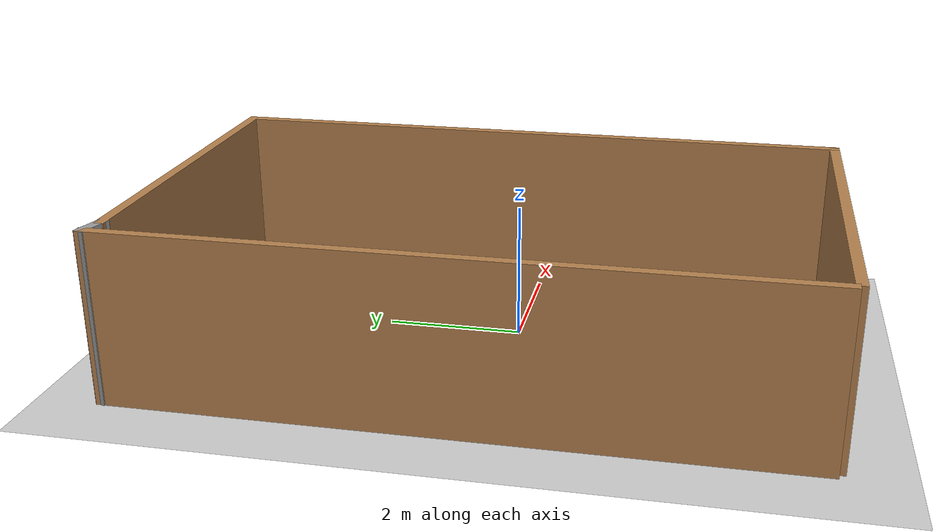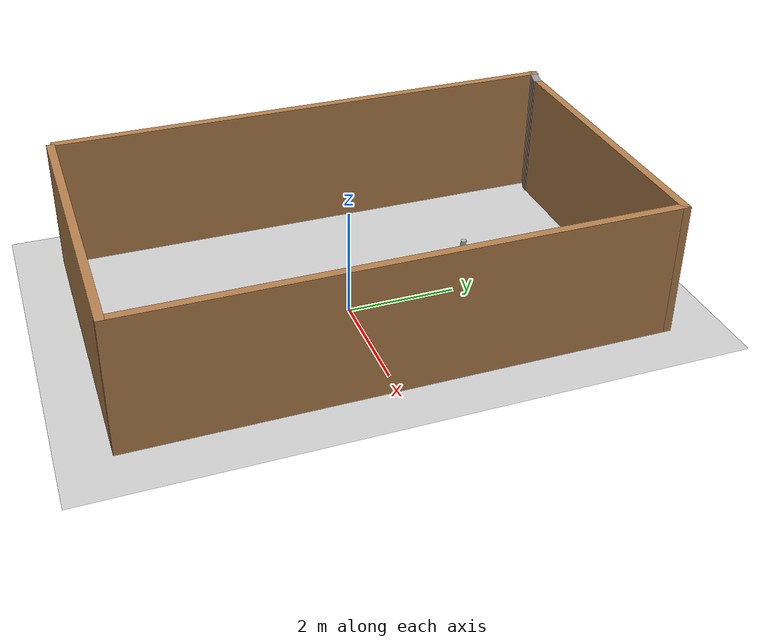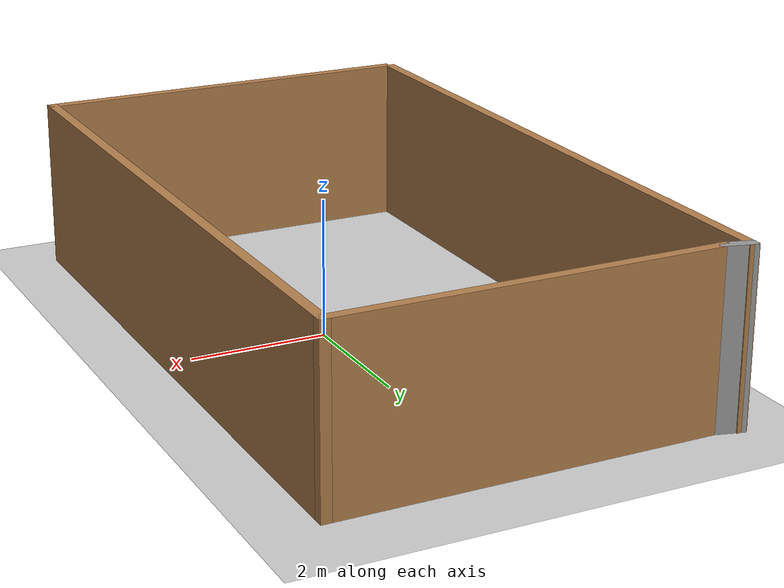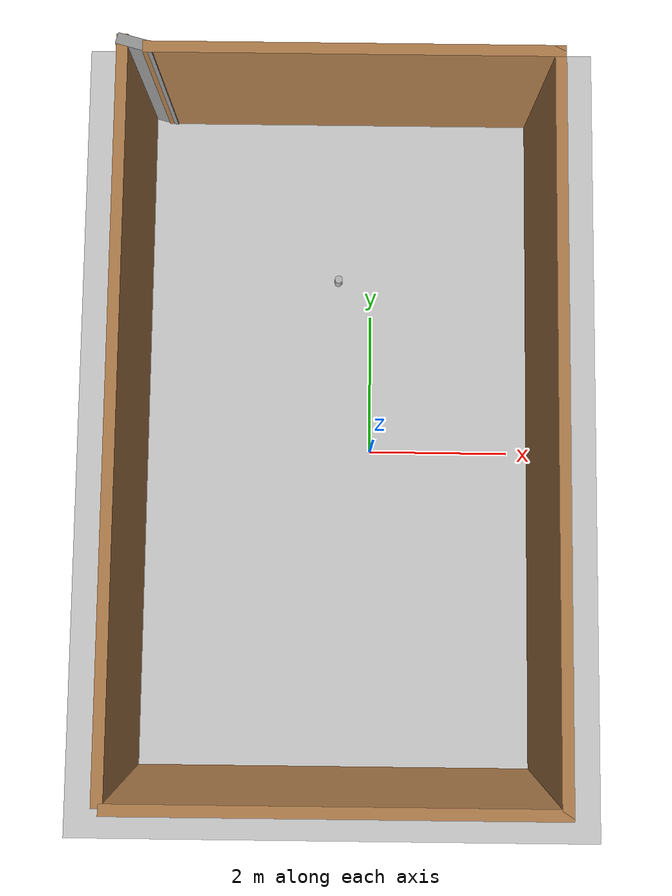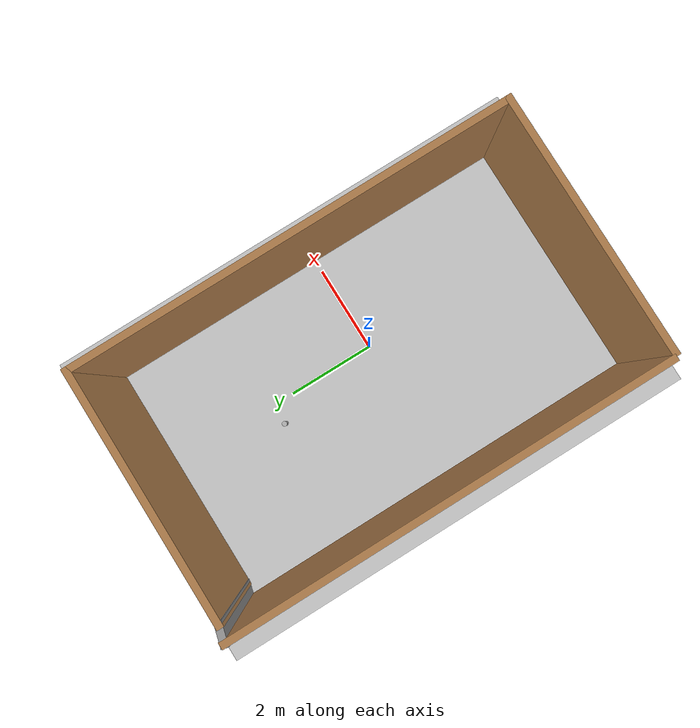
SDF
<sdf version="1.6">
 <world name="default">
  <light name="sun" type="directional">
   <pose>0 0 10 0 -0 0</pose>
   <diffuse>0.8 0.8 0.8 1</diffuse>
   <specular>0.1 0.1 0.1 1</specular>
   <attenuation>
    <range>1000</range>
    <constant>0.9</constant>
    <linear>0.01</linear>
    <quadratic>0.001</quadratic>
   </attenuation>
   <direction>-0.5 0.5 -1</direction>
  </light>
  <model name="ground_plane">
   <static>1</static>
   <link name="link">
    <collision name="collision">
     <geometry><plane><normal>0 0 1</normal><size>100 100</size></plane></geometry>
     <surface><friction><ode><mu>100</mu><mu2>50</mu2></ode></friction></surface>
    </collision>
    <visual name="visual">
     <cast_shadows>0</cast_shadows>
     <geometry><plane><normal>0 0 1</normal><size>100 100</size></plane></geometry>
     <material>
      <script><uri>file://media/materials/scripts/gazebo.material</uri><name>Gazebo/Grey</name></script>
     </material>
    </visual>
   </link>
  </model>
  <gravity>0 0 -9.8</gravity>
  <magnetic_field>6e-06 2.3e-05 -4.2e-05</magnetic_field>
  <atmosphere type="adiabatic"/>
  <physics name="default_physics" default="0" type="ode">
   <max_step_size>0.001</max_step_size>
   <real_time_factor>1</real_time_factor>
   <real_time_update_rate>1000</real_time_update_rate>
  </physics>
  <scene><ambient>0.4 0.4 0.4 1</ambient><background>0.7 0.7 0.7 1</background><shadows>1</shadows></scene>
  <spherical_coordinates>
   <surface_model>EARTH_WGS84</surface_model>
   <latitude_deg>0</latitude_deg>
   <longitude_deg>0</longitude_deg>
   <elevation>0</elevation>
   <heading_deg>0</heading_deg>
  </spherical_coordinates>
  <model name="Untitled">
   <pose>-0.487456 0.28794 0 0 -0 0</pose>
   <link name="Wall_4">
    <collision name="Wall_4_Collision">
     <geometry><box><size>5.75 0.15 2.5</size></box></geometry>
     <pose>0 0 1.25 0 -0 0</pose>
    </collision>
    <visual name="Wall_4_Visual">
     <pose>0 0 1.25 0 -0 0</pose>
     <geometry><box><size>5.75 0.15 2.5</size></box></geometry>
     <material>
      <script><uri>file://media/materials/scripts/gazebo.material</uri><name>Gazebo/Wood</name></script>
      <ambient>1 1 1 1</ambient>
     </material>
    </visual>
    <pose>0.052465 -4.85372 0 0 -0 0</pose>
   </link>
   <link name="Wall_5">
    <collision name="Wall_5_Collision">
     <geometry><box><size>9.75 0.15 2.5</size></box></geometry>
     <pose>0 0 1.25 0 -0 0</pose>
    </collision>
    <visual name="Wall_5_Visual">
     <pose>0 0 1.25 0 -0 0</pose>
     <geometry><box><size>9.75 0.15 2.5</size></box></geometry>
     <material>
      <script><uri>file://media/materials/scripts/gazebo.material</uri><name>Gazebo/Wood</name></script>
      <ambient>1 1 1 1</ambient>
     </material>
    </visual>
    <pose>2.85247 -0.053721 0 0 -0 1.5708</pose>
   </link>
   <link name="Wall_6">
    <collision name="Wall_6_Collision">
     <geometry><box><size>5.5 0.15 2.5</size></box></geometry>
     <pose>0 0 1.25 0 -0 0</pose>
    </collision>
    <visual name="Wall_6_Visual">
     <pose>0 0 1.25 0 -0 0</pose>
     <geometry><box><size>5.5 0.15 2.5</size></box></geometry>
     <material>
      <script><uri>file://media/materials/scripts/gazebo.material</uri><name>Gazebo/Wood</name></script>
      <ambient>1 1 1 1</ambient>
     </material>
    </visual>
    <pose>0.177465 4.74628 0 0 -0 3.14159</pose>
   </link>
   <link name="Wall_8">
    <collision name="Wall_8_Collision">
     <geometry><box><size>0.5 0.15 2.5</size></box></geometry>
     <pose>0 0 1.25 0 -0 0</pose>
    </collision>
    <visual name="Wall_8_Visual">
     <pose>0 0 1.25 0 -0 0</pose>
     <geometry><box><size>0.5 0.15 2.5</size></box></geometry>
     <material>
      <script><uri>file://media/materials/scripts/gazebo.material</uri><name>Gazebo/Grey</name></script>
      <ambient>1 1 1 1</ambient>
     </material>
    </visual>
    <pose>-2.66657 4.79157 0 0 -0 2.87979</pose>
   </link>
   <link name="Wall_9">
    <collision name="Wall_9_Collision">
     <geometry><box><size>9.75 0.15 2.5</size></box></geometry>
     <pose>0 0 1.25 0 -0 0</pose>
    </collision>
    <visual name="Wall_9_Visual">
     <pose>0 0 1.25 0 -0 0</pose>
     <geometry><box><size>9.75 0.15 2.5</size></box></geometry>
     <material>
      <script><uri>file://media/materials/scripts/gazebo.material</uri><name>Gazebo/Wood</name></script>
      <ambient>1 1 1 1</ambient>
     </material>
    </visual>
    <pose>-2.83561 0.036866 0 0 0 -1.5708</pose>
   </link>
   <static>1</static>
  </model>
  <model name="beer">
   <link name="link">
    <pose>0 0 0.115 0 -0 0</pose>
    <inertial>
     <mass>0.39</mass>
     <inertia><ixx>0.00058</ixx><ixy>0</ixy><ixz>0</ixz><iyy>0.00058</iyy><iyz>0</iyz><izz>0.00019</izz></inertia>
    </inertial>
    <collision name="collision">
     <geometry><cylinder><radius>0.055</radius><length>0.23</length></cylinder></geometry>
    </collision>
    <visual name="visual">
     <geometry><cylinder><radius>0.055</radius><length>0.23</length></cylinder></geometry>
     <material>
      <script>
       <uri>model://beer/materials/scripts</uri>
       <uri>model://beer/materials/textures</uri>
       <name>Beer/Diffuse</name>
      </script>
     </material>
    </visual>
   </link>
   <pose>-0.482793 2.41388 0.469897 -5e-06 -2.3e-05 -0.258052</pose>
  </model>
 </world>
</sdf>
